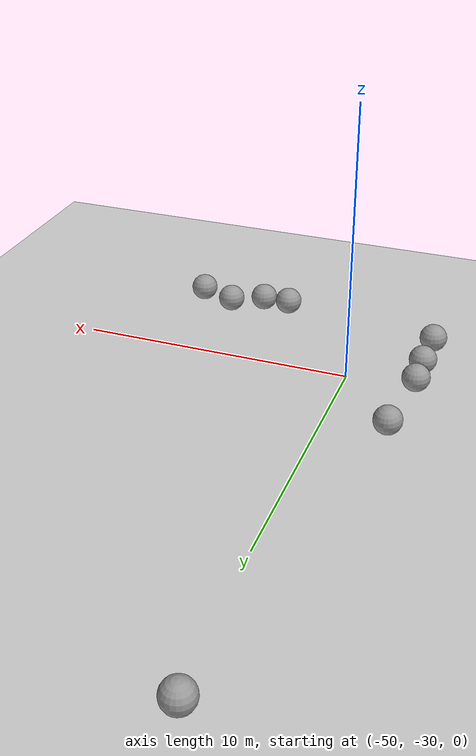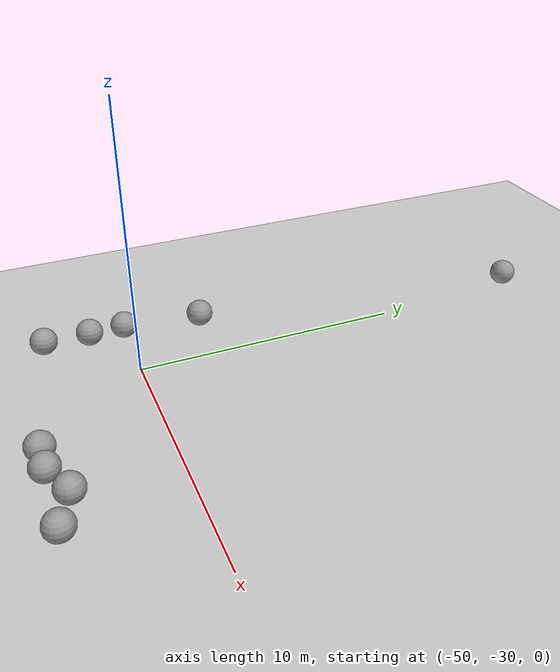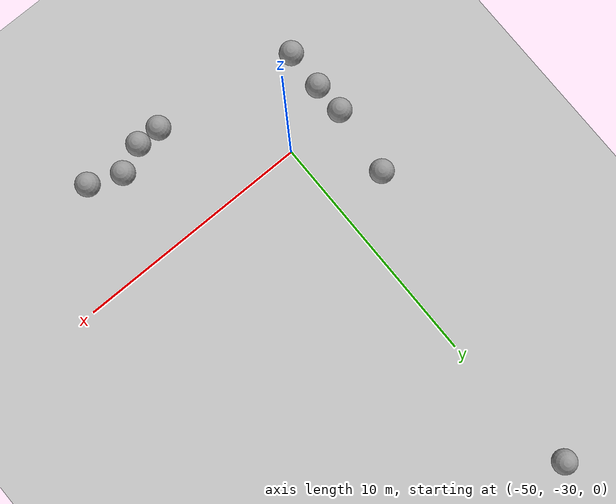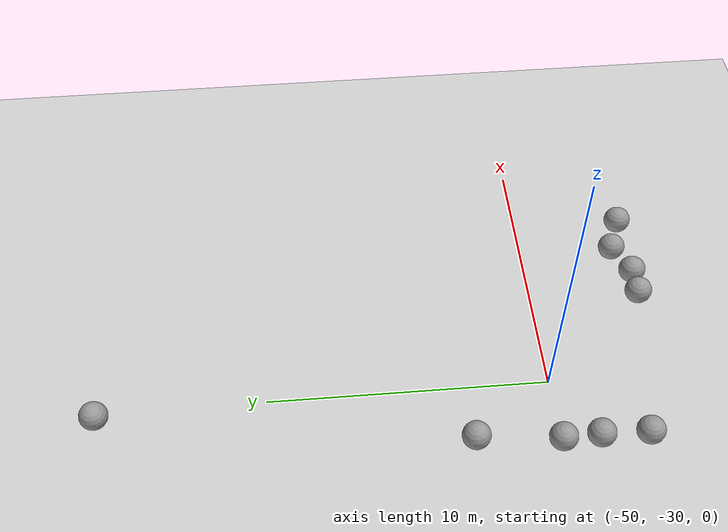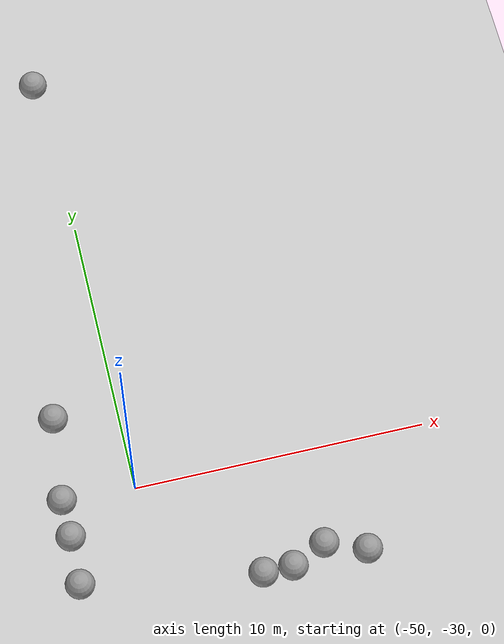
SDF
<sdf version="1.6">
 <world name="default">
  <model name="ground_plane">
   <static>1</static>
   <link name="link">
    <collision name="collision">
     <geometry><plane><normal>0 0 1</normal><size>100 100</size></plane></geometry>
     <surface><friction><ode><mu>100</mu><mu2>50</mu2></ode></friction></surface>
    </collision>
    <visual name="visual">
     <cast_shadows>0</cast_shadows>
     <geometry><plane><normal>0 0 1</normal><size>100 100</size></plane></geometry>
     <material>
      <script><uri>file://media/materials/scripts/gazebo.material</uri><name>Gazebo/Grey</name></script>
     </material>
    </visual>
   </link>
  </model>
  <model name="unit_sphere_0_clone_60">
   <pose>-52.4564 -31.3153 0.5 0 -0 0</pose>
   <link name="link">
    <inertial>
     <mass>1</mass>
     <inertia><ixx>0.1</ixx><ixy>0</ixy><ixz>0</ixz><iyy>0.1</iyy><iyz>0</iyz><izz>0.1</izz></inertia>
    </inertial>
    <collision name="collision"><geometry><sphere><radius>0.5</radius></sphere></geometry></collision>
    <visual name="visual">
     <geometry><sphere><radius>0.5</radius></sphere></geometry>
     <material>
      <script><name>Gazebo/Grey</name><uri>file://media/materials/scripts/gazebo.material</uri></script>
     </material>
    </visual>
   </link>
  </model>
  <model name="unit_sphere_0_clone_81">
   <pose>-44.3514 -33.4726 0.5 0 -0 0</pose>
   <link name="link">
    <inertial>
     <mass>1</mass>
     <inertia><ixx>0.1</ixx><ixy>0</ixy><ixz>0</ixz><iyy>0.1</iyy><iyz>0</iyz><izz>0.1</izz></inertia>
    </inertial>
    <collision name="collision"><geometry><sphere><radius>0.5</radius></sphere></geometry></collision>
    <visual name="visual">
     <geometry><sphere><radius>0.5</radius></sphere></geometry>
     <material>
      <script><name>Gazebo/Grey</name><uri>file://media/materials/scripts/gazebo.material</uri></script>
     </material>
    </visual>
   </link>
  </model>
  <model name="unit_sphere_0_clone_83">
   <pose>-52.1969 -27.0734 0.5 -0.047099 0.051382 -0.026603</pose>
   <link name="link">
    <inertial>
     <mass>1</mass>
     <inertia><ixx>0.1</ixx><ixy>0</ixy><ixz>0</ixz><iyy>0.1</iyy><iyz>0</iyz><izz>0.1</izz></inertia>
    </inertial>
    <collision name="collision"><geometry><sphere><radius>0.5</radius></sphere></geometry></collision>
    <visual name="visual">
     <geometry><sphere><radius>0.5</radius></sphere></geometry>
     <material>
      <script><name>Gazebo/Grey</name><uri>file://media/materials/scripts/gazebo.material</uri></script>
     </material>
    </visual>
   </link>
  </model>
  <model name="unit_sphere_0_clone_86">
   <pose>-50.3317 -14.1295 0.5 0 -0 0</pose>
   <link name="link">
    <inertial>
     <mass>1</mass>
     <inertia><ixx>0.1</ixx><ixy>0</ixy><ixz>0</ixz><iyy>0.1</iyy><iyz>0</iyz><izz>0.1</izz></inertia>
    </inertial>
    <collision name="collision"><geometry><sphere><radius>0.5</radius></sphere></geometry></collision>
    <visual name="visual">
     <geometry><sphere><radius>0.5</radius></sphere></geometry>
     <material>
      <script><name>Gazebo/Grey</name><uri>file://media/materials/scripts/gazebo.material</uri></script>
     </material>
    </visual>
   </link>
  </model>
  <model name="unit_sphere_1_clone_58">
   <pose>-43 -34 0.5 0 -0 0</pose>
   <link name="link">
    <inertial>
     <mass>1</mass>
     <inertia><ixx>0.1</ixx><ixy>0</ixy><ixz>0</ixz><iyy>0.1</iyy><iyz>0</iyz><izz>0.1</izz></inertia>
    </inertial>
    <collision name="collision"><geometry><sphere><radius>0.5</radius></sphere></geometry></collision>
    <visual name="visual">
     <geometry><sphere><radius>0.5</radius></sphere></geometry>
     <material>
      <script><name>Gazebo/Grey</name><uri>file://media/materials/scripts/gazebo.material</uri></script>
     </material>
    </visual>
   </link>
  </model>
  <model name="unit_sphere_1_clone_60">
   <pose>-45.531 -34 0.5 0 0.012729 0</pose>
   <link name="link">
    <inertial>
     <mass>1</mass>
     <inertia><ixx>0.1</ixx><ixy>0</ixy><ixz>0</ixz><iyy>0.1</iyy><iyz>0</iyz><izz>0.1</izz></inertia>
    </inertial>
    <collision name="collision"><geometry><sphere><radius>0.5</radius></sphere></geometry></collision>
    <visual name="visual">
     <geometry><sphere><radius>0.5</radius></sphere></geometry>
     <material>
      <script><name>Gazebo/Grey</name><uri>file://media/materials/scripts/gazebo.material</uri></script>
     </material>
    </visual>
   </link>
  </model>
  <model name="unit_sphere_1_clone_61">
   <pose>-46.5435 -34 0.5 0 -0.012246 0</pose>
   <link name="link">
    <inertial>
     <mass>1</mass>
     <inertia><ixx>0.1</ixx><ixy>0</ixy><ixz>0</ixz><iyy>0.1</iyy><iyz>0</iyz><izz>0.1</izz></inertia>
    </inertial>
    <collision name="collision"><geometry><sphere><radius>0.5</radius></sphere></geometry></collision>
    <visual name="visual">
     <geometry><sphere><radius>0.5</radius></sphere></geometry>
     <material>
      <script><name>Gazebo/Grey</name><uri>file://media/materials/scripts/gazebo.material</uri></script>
     </material>
    </visual>
   </link>
  </model>
  <model name="unit_sphere_1_clone_66">
   <pose>-52.4907 -33 0.5 0 -0 0</pose>
   <link name="link">
    <inertial>
     <mass>1</mass>
     <inertia><ixx>0.1</ixx><ixy>0</ixy><ixz>0</ixz><iyy>0.1</iyy><iyz>0</iyz><izz>0.1</izz></inertia>
    </inertial>
    <collision name="collision"><geometry><sphere><radius>0.5</radius></sphere></geometry></collision>
    <visual name="visual">
     <geometry><sphere><radius>0.5</radius></sphere></geometry>
     <material>
      <script><name>Gazebo/Grey</name><uri>file://media/materials/scripts/gazebo.material</uri></script>
     </material>
    </visual>
   </link>
  </model>
  <model name="unit_sphere_1_clone_67">
   <pose>-52.4909 -30 0.5 0 -0 0</pose>
   <link name="link">
    <inertial>
     <mass>1</mass>
     <inertia><ixx>0.1</ixx><ixy>0</ixy><ixz>0</ixz><iyy>0.1</iyy><iyz>0</iyz><izz>0.1</izz></inertia>
    </inertial>
    <collision name="collision"><geometry><sphere><radius>0.5</radius></sphere></geometry></collision>
    <visual name="visual">
     <geometry><sphere><radius>0.5</radius></sphere></geometry>
     <material>
      <script><name>Gazebo/Grey</name><uri>file://media/materials/scripts/gazebo.material</uri></script>
     </material>
    </visual>
   </link>
  </model>
 </world>
</sdf>
